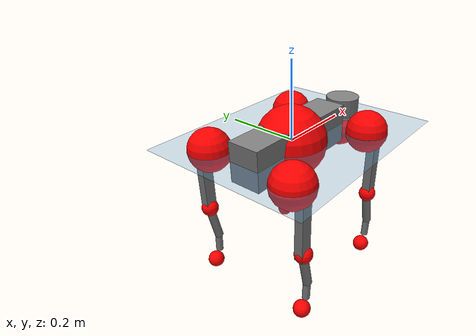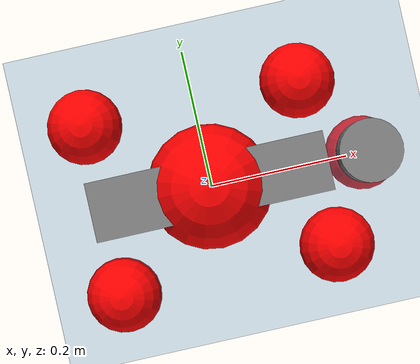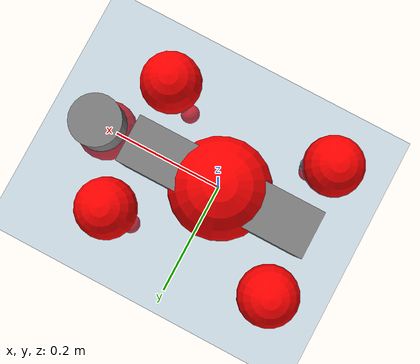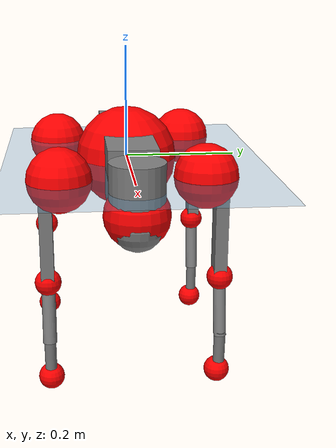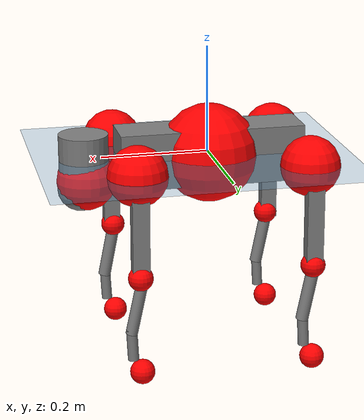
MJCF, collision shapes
<mujoco model="go2">
  <compiler angle="radian" assetdir="assets" balanceinertia="true" inertiafromgeom="false"/>

  <option timestep="0.005" density="1.2" viscosity="2e-05"/>

  <size nkey="1"/>

  <visual>
    <quality shadowsize="8192"/>
    <map shadowclip="0.5"/>
  </visual>

  <default>
    <default class="/">
      <geom contype="0" conaffinity="0" group="1" solref="-1000 -80"/>
      <site size="0.01 0.005 0.005" group="5"/>
      <general forcelimited="true" biastype="affine" gainprm="20" biasprm="0 -20 -0.5"/>
      <default class="go2">
        <joint armature="0.01" damping="0.01" frictionloss="0.2"/>
        <geom condim="1" margin="0.001"/>
        <default class="visual">
          <geom type="mesh" group="2"/>
        </default>
        <default class="collision">
          <geom group="3"/>
          <default class="foot">
            <geom size="0.022 0 0" condim="6" priority="1" friction="0.8 0.02 0.01" solimp="0.015 1 0.022"/>
          </default>
        </default>
        <default class="reward_collision_sphere">
          <geom group="5" rgba="1 0 0 1"/>
        </default>
      </default>
    </default>
  </default>

  <asset>
    <texture type="skybox" colorspace="auto" name="//unnamed_texture_0" builtin="gradient" rgb1="0.95 0.95 0.95" rgb2="0.95 0.95 0.95" width="100" height="600"/>
    <texture type="2d" colorspace="auto" name="texplane" builtin="checker" rgb1="0.345 0.575 0.748" rgb2="0.345 0.575 0.748" markrgb="1 1 1" width="512" height="512"/>
    <material name="MatPlane" class="/" texture="texplane" texuniform="true" texrepeat="2 2" specular="0.9"/>
    <material name="metal" class="/" rgba="0.9 0.95 0.95 1"/>
    <material name="black" class="/" rgba="0 0 0 1"/>
    <material name="white" class="/"/>
    <material name="gray" class="/" rgba="0.671705 0.692426 0.77427 1"/>
    <mesh name="base_0" class="/" file="base_0.obj"/>
    <mesh name="base_1" class="/" file="base_1.obj"/>
    <mesh name="base_2" class="/" file="base_2.obj"/>
    <mesh name="base_3" class="/" file="base_3.obj"/>
    <mesh name="base_4" class="/" file="base_4.obj"/>
    <mesh name="hip_0" class="/" file="hip_0.obj"/>
    <mesh name="hip_1" class="/" file="hip_1.obj"/>
    <mesh name="thigh_0" class="/" file="thigh_0.obj"/>
    <mesh name="thigh_1" class="/" file="thigh_1.obj"/>
    <mesh name="thigh_mirror_0" class="/" file="thigh_mirror_0.obj"/>
    <mesh name="thigh_mirror_1" class="/" file="thigh_mirror_1.obj"/>
    <mesh name="calf_0" class="/" file="calf_0.obj"/>
    <mesh name="calf_1" class="/" file="calf_1.obj"/>
    <mesh name="calf_mirror_0" class="/" file="calf_mirror_0.obj"/>
    <mesh name="calf_mirror_1" class="/" file="calf_mirror_1.obj"/>
    <mesh name="foot" class="/" file="foot.obj"/>
  </asset>

  <worldbody>
    <geom name="floor" class="/" size="100 100 0.125" type="plane" group="0" material="MatPlane"/>
    <light name="toplight_shadow" class="/" pos="0 0 5" dir="0.0990148 0.0990148 -0.990148" type="directional" ambient="0.04 0.04 0.04" diffuse="0.55 0.55 0.55" specular="0.12 0.12 0.12"/>
    <light name="toplight_fill" class="/" pos="0 0 5" dir="0.0990148 0.0990148 -0.990148" type="directional" castshadow="false" ambient="0.04 0.04 0.04" diffuse="0.3 0.3 0.3" specular="0.08 0.08 0.08"/>
    <body name="trunk" childclass="go2" pos="-0.00309075 -0.000207477 -0.00226089" quat="1 0.00087669 0.000312769 2.02152e-05">
      <inertial pos="0.0198502 0.00254124 -0.00588969" quat="0.00134436 0.719213 -0.00752357 0.694748" mass="5.81257" diaginertia="0.0427529 0.146247 0.0120948"/>
      <joint name="//unnamed_joint_0" type="free" armature="0" damping="0" frictionloss="0"/>
      <geom name="//unnamed_geom_1" class="visual" material="black" mesh="base_0"/>
      <geom name="//unnamed_geom_2" class="visual" material="black" mesh="base_1"/>
      <geom name="//unnamed_geom_3" class="visual" material="black" mesh="base_2"/>
      <geom name="//unnamed_geom_4" class="visual" material="white" mesh="base_3"/>
      <geom name="//unnamed_geom_5" class="visual" material="gray" mesh="base_4"/>
      <geom name="trunk_1" class="collision" size="0.173097 0.0430212 0.0524537" type="box"/>
      <geom name="trunk_2" class="collision" size="0.046012 0.0414108" pos="0.235681 0 0.00857521" type="cylinder"/>
      <geom name="trunk_3" class="collision" size="0.0432513" pos="0.242297 0 -0.0514512"/>
      <geom name="//unnamed_geom_9" class="reward_collision_sphere" size="0.092024"/>
      <geom name="//unnamed_geom_10" class="reward_collision_sphere" size="0.0552144" pos="0.231546 0 -0.0385884"/>
      <site name="imu" pos="-0.0235002 0.00925743 0.0288037" size="0.0092024"/>
      <camera name="track" pos="0 -2.15249 0" quat="0.707107 0.707107 0 0" mode="trackcom"/>
      <camera name="ego_camera" pos="0.258009 0 0.0385884" quat="-0.5 -0.5 0.5 0.5"/>
      <body name="FL_hip" pos="0.157734 0.0477251 0.00239441" quat="0.999999 -0.000223143 -0.00116867 -6.27911e-05">
        <inertial pos="-0.0016788 0.00174666 -0.00217695" quat="0.494468 0.497985 0.508366 0.499075" mass="0.528587" diaginertia="0.000338019 0.000908398 0.00022276"/>
        <joint name="FL_hip_joint" pos="0 0 0" axis="0.999865 0.00713604 -0.0148231" range="-1.10205 1.02763" armature="0.00944753" damping="0.0201311" frictionloss="0.184566"/>
        <geom name="//unnamed_geom_11" class="visual" material="metal" mesh="hip_0"/>
        <geom name="//unnamed_geom_12" class="visual" material="gray" mesh="hip_1"/>
        <geom name="//unnamed_geom_13" class="collision" size="0.042331 0.0184048" pos="0 0.0860997 0" quat="0.707107 0.707107 0 0" type="cylinder"/>
        <geom name="//unnamed_geom_14" class="reward_collision_sphere" size="0.0552144" pos="0 0.0753372 0"/>
        <body name="FL_thigh" pos="0.00157597 0.102048 0.00151171" quat="1 -0.000185299 -0.000218025 0.000242413">
          <inertial pos="-0.00269055 -0.0251218 -0.0263554" quat="0.828996 0.0847498 -0.0203498 0.552422" mass="0.892767" diaginertia="0.00234947 0.00841604 0.000387649"/>
          <joint name="FL_thigh_joint" pos="0 0 0" axis="0.000152935 0.999928 0.0119594" stiffness="0.0196259" range="-1.52275 3.48538" armature="0.00806397" damping="0.000576203" frictionloss="0.159194"/>
          <geom name="//unnamed_geom_15" class="visual" material="metal" mesh="thigh_0"/>
          <geom name="//unnamed_geom_16" class="visual" material="gray" mesh="thigh_1"/>
          <geom name="//unnamed_geom_17" class="collision" size="0.0980055 0.0112729 0.0156441" pos="0 0 -0.0913259" quat="0.707107 0 0.707107 0" type="box"/>
          <body name="FL_calf" pos="0.000200133 0.00159878 -0.184413" quat="1 -0.000252617 -0.000413255 0.00045508">
            <inertial pos="0.00563805 3.81786e-05 -0.12008" quat="0.719147 -0.00247869 -0.00231553 0.69485" mass="0.1873" diaginertia="0.000541028 0.0020537 2.43833e-05"/>
            <joint name="FL_calf_joint" pos="0 0 0" axis="0.00535834 0.999764 0.0210389" stiffness="0.00514234" range="-2.68809 -0.830097" armature="0.0100546" damping="0.0100918" frictionloss="0.202365"/>
            <geom name="//unnamed_geom_18" class="visual" material="gray" mesh="calf_0"/>
            <geom name="//unnamed_geom_19" class="visual" material="black" mesh="calf_1"/>
            <geom name="FL_calf0" class="collision" size="0.0110429 0.0552144" pos="0.00661561 0 -0.0514512" quat="0.994493 0 -0.104807 0" type="cylinder"/>
            <geom name="//unnamed_geom_21" class="collision" size="0.0101226 0.0299078" pos="0.016539 0 -0.126913" quat="0.999688 0 0.0249974 0" type="cylinder"/>
            <geom name="//unnamed_geom_22" class="visual" pos="0 0 -0.182652" quat="1 0 0 0" material="black" mesh="foot"/>
            <geom name="FL_foot" class="foot" size="0.0157768" pos="-0.0016539 0 -0.182652"/>
            <geom name="//unnamed_geom_24" class="reward_collision_sphere" size="0.023006"/>
            <geom name="//unnamed_geom_25" class="reward_collision_sphere" size="0.023006" pos="-0.0016539 0 -0.182652"/>
            <site name="FL_foot" class="foot" pos="-0.0016539 0 -0.182652" size="0.0092024"/>
          </body>
        </body>
      </body>
      <body name="FR_hip" pos="0.162484 -0.0478305 0.00244643" quat="1 -6.55107e-05 -3.19724e-05 -7.61783e-05">
        <inertial pos="-0.0023805 -0.000897275 -2.80666e-05" quat="0.496011 0.505152 0.500162 0.498631" mass="0.532226" diaginertia="0.000333291 0.000839774 0.000214559"/>
        <joint name="FR_hip_joint" pos="0 0 0" axis="0.999949 0.000642852 0.0100385" range="-0.996843 1.05686" armature="0.0103193" damping="0.0136722" frictionloss="0.190939"/>
        <geom name="//unnamed_geom_26" class="visual" pos="0 1.90545e-09 8.17286e-08" quat="4.63268e-05 1 0 0" material="metal" mesh="hip_0"/>
        <geom name="//unnamed_geom_27" class="visual" pos="0 3.08896e-09 -2.02146e-07" quat="4.63268e-05 1 0 0" material="gray" mesh="hip_1"/>
        <geom name="//unnamed_geom_28" class="collision" size="0.042331 0.0184048" pos="0 -0.0860997 0" quat="0.707107 0.707107 0 0" type="cylinder"/>
        <geom name="//unnamed_geom_29" class="reward_collision_sphere" size="0.0552144" pos="0 -0.0753372 0"/>
        <body name="FR_thigh" pos="-2.86148e-05 -0.0998856 0.00261673" quat="1 2.14947e-07 -1.15514e-06 3.88829e-07">
          <inertial pos="-0.00115939 0.0238817 -0.0286023" quat="0.552775 -0.0225154 0.0894206 0.828213" mass="0.887629" diaginertia="0.00221968 0.00792737 0.000393504"/>
          <joint name="FR_thigh_joint" pos="0 0 0" axis="-0.00801824 -0.999906 -0.0111397" range="-3.52118 1.56362" armature="0.00896667" damping="0.000551209" frictionloss="0.206368"/>
          <geom name="//unnamed_geom_30" class="visual" material="metal" mesh="thigh_mirror_0"/>
          <geom name="//unnamed_geom_31" class="visual" material="gray" mesh="thigh_mirror_1"/>
          <geom name="//unnamed_geom_32" class="collision" size="0.0980055 0.0112729 0.0156441" pos="0 0 -0.0913259" quat="0.707107 0 0.707107 0" type="box"/>
          <body name="FR_calf" pos="-0.00236368 8.15282e-05 -0.185099" quat="1 -3.86113e-05 -3.11493e-05 -0.000213421">
            <inertial pos="0.0056087 0.000932727 -0.122227" quat="0.704165 0.00215542 0.00182166 0.710031" mass="0.189444" diaginertia="0.000574332 0.00211272 2.45388e-05"/>
            <joint name="FR_calf_joint" pos="0 0 0" axis="0.00940543 -0.999955 0.000753907" stiffness="0.0105796" range="0.83984 2.73419" armature="0.00794076" damping="0.00756475" frictionloss="0.160554"/>
            <geom name="//unnamed_geom_33" class="visual" material="gray" mesh="calf_mirror_0"/>
            <geom name="//unnamed_geom_34" class="visual" material="black" mesh="calf_mirror_1"/>
            <geom name="FR_calf0" class="collision" size="0.0119631 0.0552144" pos="0.00826952 0 -0.0514512" quat="0.995004 0 -0.0998334 0" type="cylinder"/>
            <geom name="//unnamed_geom_36" class="collision" size="0.0101226 0.0299078" pos="0.016539 0 -0.126913" quat="0.999688 0 0.0249974 0" type="cylinder"/>
            <geom name="//unnamed_geom_37" class="visual" pos="0 0 -0.182652" quat="1 0 0 0" material="black" mesh="foot"/>
            <geom name="FR_foot" class="foot" size="0.0200129" pos="-0.0016539 0 -0.182652"/>
            <geom name="//unnamed_geom_39" class="reward_collision_sphere" size="0.023006"/>
            <geom name="//unnamed_geom_40" class="reward_collision_sphere" size="0.023006" pos="-0.0016539 0 -0.182652"/>
            <site name="FR_foot" class="foot" pos="-0.0016539 0 -0.182652" size="0.0092024"/>
          </body>
        </body>
      </body>
      <body name="RL_hip" pos="-0.159625 0.0491735 -4.32904e-05" quat="1 -8.24686e-05 -0.00012741 0.000201764">
        <inertial pos="0.00685073 -0.000137926 -0.000354989" quat="0.51365 0.488258 0.489866 0.507739" mass="0.529505" diaginertia="0.000354451 0.000894282 0.000224474"/>
        <joint name="RL_hip_joint" pos="0 0 0" axis="-0.999732 -0.0144267 0.0181073" stiffness="0.00187124" range="-1.07362 1.01449" armature="0.00939405" damping="0" frictionloss="0.172033"/>
        <geom name="//unnamed_geom_41" class="visual" pos="2.66303e-10 0 5.22015e-08" quat="4.63268e-05 0 1 0" material="metal" mesh="hip_0"/>
        <geom name="//unnamed_geom_42" class="visual" pos="4.31709e-10 0 4.62953e-08" quat="4.63268e-05 0 1 0" material="gray" mesh="hip_1"/>
        <geom name="//unnamed_geom_43" class="collision" size="0.042331 0.0184048" pos="0 0.0860997 0" quat="0.707107 0.707107 0 0" type="cylinder"/>
        <geom name="//unnamed_geom_44" class="reward_collision_sphere" size="0.0552144" pos="0 0.0753372 0"/>
        <body name="RL_thigh" pos="-0.000786199 0.1038 -0.00157716" quat="1 -5.64727e-05 0.000508767 0.000376533">
          <inertial pos="-0.00303033 -0.023657 -0.0259995" quat="0.833267 0.0732062 -0.0161513 0.547765" mass="0.899764" diaginertia="0.00236451 0.00891547 0.000426521"/>
          <joint name="RL_thigh_joint" pos="0 0 0" axis="-0.00382384 0.999984 -0.00423071" range="-0.523207 4.53391" armature="0.00927414" damping="0" frictionloss="0.183762"/>
          <geom name="//unnamed_geom_45" class="visual" material="metal" mesh="thigh_0"/>
          <geom name="//unnamed_geom_46" class="visual" material="gray" mesh="thigh_1"/>
          <geom name="//unnamed_geom_47" class="collision" size="0.0980055 0.0112729 0.0156441" pos="0 0 -0.0913259" quat="0.707107 0 0.707107 0" type="box"/>
          <body name="RL_calf" pos="-0.000156482 -0.00187862 -0.18063" quat="0.999999 -0.000700165 0.000759233 0.000719706">
            <inertial pos="0.00249994 -0.00333555 -0.121331" quat="0.709441 0.00444511 0.00469669 0.704735" mass="0.194174" diaginertia="0.000581871 0.00218171 2.63758e-05"/>
            <joint name="RL_calf_joint" pos="0 0 0" axis="-0.0223294 0.999693 0.0107439" stiffness="0.0180996" range="-2.73361 -0.790516" armature="0.009927" damping="0.00167042" frictionloss="0.161321"/>
            <geom name="//unnamed_geom_48" class="visual" material="gray" mesh="calf_0"/>
            <geom name="//unnamed_geom_49" class="visual" material="black" mesh="calf_1"/>
            <geom name="RL_calf0" class="collision" size="0.0119631 0.0552144" pos="0.00826952 0 -0.0514512" quat="0.995004 0 -0.0998334 0" type="cylinder"/>
            <geom name="//unnamed_geom_51" class="collision" size="0.0101226 0.0299078" pos="0.016539 0 -0.126913" quat="0.999688 0 0.0249974 0" type="cylinder"/>
            <geom name="//unnamed_geom_52" class="visual" pos="0 0 -0.182652" quat="1 0 0 0" material="black" mesh="foot"/>
            <geom name="RL_foot" class="foot" size="0.0180001" pos="-0.0016539 0 -0.182652"/>
            <geom name="//unnamed_geom_54" class="reward_collision_sphere" size="0.023006"/>
            <geom name="//unnamed_geom_55" class="reward_collision_sphere" size="0.023006" pos="-0.0016539 0 -0.182652"/>
            <site name="RL_foot" class="foot" pos="-0.0016539 0 -0.182652" size="0.0092024"/>
          </body>
        </body>
      </body>
      <body name="RR_hip" pos="-0.156923 -0.052333 -0.00461974" quat="0.999999 0.00050021 0.00112623 0.000228666">
        <inertial pos="0.00196023 -0.00165824 0.00217814" quat="0.496604 0.49635 0.499172 0.507787" mass="0.530251" diaginertia="0.000345751 0.000867247 0.000220939"/>
        <joint name="RR_hip_joint" pos="0 0 0" axis="-0.9999 -0.00464365 0.0133386" stiffness="0.000933163" range="-0.991367 1.08123" armature="0.00807803" damping="0" frictionloss="0.202833"/>
        <geom name="//unnamed_geom_56" class="visual" pos="-2.57672e-10 1.90545e-09 -2.95271e-08" quat="2.14617e-09 4.63268e-05 4.63268e-05 -1" material="metal" mesh="hip_0"/>
        <geom name="//unnamed_geom_57" class="visual" pos="-4.53056e-10 3.08896e-09 2.48441e-07" quat="2.14617e-09 4.63268e-05 4.63268e-05 -1" material="gray" mesh="hip_1"/>
        <geom name="//unnamed_geom_58" class="collision" size="0.042331 0.0184048" pos="0 -0.0860997 0" quat="0.707107 0.707107 0 0" type="cylinder"/>
        <geom name="//unnamed_geom_59" class="reward_collision_sphere" size="0.0552144" pos="0 -0.0753372 0"/>
        <body name="RR_thigh" pos="-0.00156255 -0.104517 0.00322471" quat="1 -0.000810015 -0.000272019 -3.49892e-05">
          <inertial pos="-0.00456126 0.0234218 -0.0280656" quat="0.548528 -0.0178324 0.0862363 0.831482" mass="0.905296" diaginertia="0.00224288 0.00853459 0.000405482"/>
          <joint name="RR_thigh_joint" pos="0 0 0" axis="0.012249 -0.999915 0.00447122" stiffness="0.00794618" range="-4.53038 0.505746" armature="0.00881678" damping="0.0235565" frictionloss="0.203443"/>
          <geom name="//unnamed_geom_60" class="visual" material="metal" mesh="thigh_mirror_0"/>
          <geom name="//unnamed_geom_61" class="visual" material="gray" mesh="thigh_mirror_1"/>
          <geom name="//unnamed_geom_62" class="collision" size="0.0980055 0.0112729 0.0156441" pos="0 0 -0.0913259" quat="0.707107 0 0.707107 0" type="box"/>
          <body name="RR_calf" pos="0.00415872 -0.000402885 -0.180741" quat="1 -0.00010238 -1.9153e-05 -0.00013291">
            <inertial pos="0.00460684 0.00210937 -0.120701" quat="0.703671 -0.00652872 0.0106552 0.710416" mass="0.187348" diaginertia="0.000594589 0.00209011 2.44917e-05"/>
            <joint name="RR_calf_joint" pos="0 0 0" axis="-0.00522473 -0.999982 0.00294211" range="0.788774 2.73995" armature="0.00799757" damping="0.00215018" frictionloss="0.159463"/>
            <geom name="//unnamed_geom_63" class="visual" material="gray" mesh="calf_mirror_0"/>
            <geom name="//unnamed_geom_64" class="visual" material="black" mesh="calf_mirror_1"/>
            <geom name="RR_calf0" class="collision" size="0.0119631 0.0552144" pos="0.00826952 0 -0.0514512" quat="0.995004 0 -0.0998334 0" type="cylinder"/>
            <geom name="//unnamed_geom_66" class="collision" size="0.0101226 0.0299078" pos="0.016539 0 -0.126913" quat="0.999688 0 0.0249974 0" type="cylinder"/>
            <geom name="//unnamed_geom_67" class="visual" pos="0 0 -0.182652" quat="1 0 0 0" material="black" mesh="foot"/>
            <geom name="RR_foot" class="foot" size="0.0205158" pos="-0.0016539 0 -0.182652"/>
            <geom name="//unnamed_geom_69" class="reward_collision_sphere" size="0.023006"/>
            <geom name="//unnamed_geom_70" class="reward_collision_sphere" size="0.023006" pos="-0.0016539 0 -0.182652"/>
            <site name="RR_foot" class="foot" pos="-0.0016539 0 -0.182652" size="0.0092024"/>
          </body>
        </body>
      </body>
    </body>
  </worldbody>

  <contact>
    <pair class="/" geom1="floor" geom2="FL_foot" name="//unnamed_contact_0"/>
    <pair class="/" geom1="floor" geom2="FR_foot" name="//unnamed_contact_1"/>
    <pair class="/" geom1="floor" geom2="RL_foot" name="//unnamed_contact_2"/>
    <pair class="/" geom1="floor" geom2="RR_foot" name="//unnamed_contact_3"/>
  </contact>

  <actuator>
    <general name="FL_hip" class="/" joint="FL_hip_joint" forcerange="-21.311 21.311" gainprm="19.2011" biasprm="0 -19.2011 -0.454434"/>
    <general name="FL_thigh" class="/" joint="FL_thigh_joint" forcerange="-20.2767 20.2767" gainprm="19.2011" biasprm="0 -19.2011 -0.454434"/>
    <general name="FL_calf" class="/" joint="FL_calf_joint" forcerange="-39.2731 39.2731" gainprm="19.2011" biasprm="0 -19.2011 -0.454434"/>
    <general name="FR_hip" class="/" joint="FR_hip_joint" forcerange="-22.1857 22.1857" gainprm="19.2011" biasprm="0 -19.2011 -0.454434"/>
    <general name="FR_thigh" class="/" joint="FR_thigh_joint" forcerange="-23.3483 23.3483" gainprm="19.2011" biasprm="0 -19.2011 -0.454434"/>
    <general name="FR_calf" class="/" joint="FR_calf_joint" forcerange="-43.1668 43.1668" gainprm="19.2011" biasprm="0 -19.2011 -0.454434"/>
    <general name="RL_hip" class="/" joint="RL_hip_joint" forcerange="-19.9101 19.9101" gainprm="19.2011" biasprm="0 -19.2011 -0.454434"/>
    <general name="RL_thigh" class="/" joint="RL_thigh_joint" forcerange="-20.1147 20.1147" gainprm="19.2011" biasprm="0 -19.2011 -0.454434"/>
    <general name="RL_calf" class="/" joint="RL_calf_joint" forcerange="-45.107 45.107" gainprm="19.2011" biasprm="0 -19.2011 -0.454434"/>
    <general name="RR_hip" class="/" joint="RR_hip_joint" forcerange="-21.0765 21.0765" gainprm="19.2011" biasprm="0 -19.2011 -0.454434"/>
    <general name="RR_thigh" class="/" joint="RR_thigh_joint" forcerange="-20.2893 20.2893" gainprm="19.2011" biasprm="0 -19.2011 -0.454434"/>
    <general name="RR_calf" class="/" joint="RR_calf_joint" forcerange="-45.703 45.703" gainprm="19.2011" biasprm="0 -19.2011 -0.454434"/>
  </actuator>

  <sensor>
    <gyro site="imu" name="imu_angular_velocity"/>
    <velocimeter site="imu" name="imu_linear_velocity"/>
    <framelinvel objtype="site" objname="FL_foot" name="FL_foot_global_linear_velocity"/>
    <framelinvel objtype="site" objname="FR_foot" name="FR_foot_global_linear_velocity"/>
    <framelinvel objtype="site" objname="RL_foot" name="RL_foot_global_linear_velocity"/>
    <framelinvel objtype="site" objname="RR_foot" name="RR_foot_global_linear_velocity"/>
  </sensor>

  <keyframe>
    <key name="home" qpos="0 0 0.325 1 0 0 0 0.1 0.8 -1.5 -0.1 -0.8 1.5 -0.1 0.8 -1.5 0.1 -0.8 1.5"/>
  </keyframe>
</mujoco>
